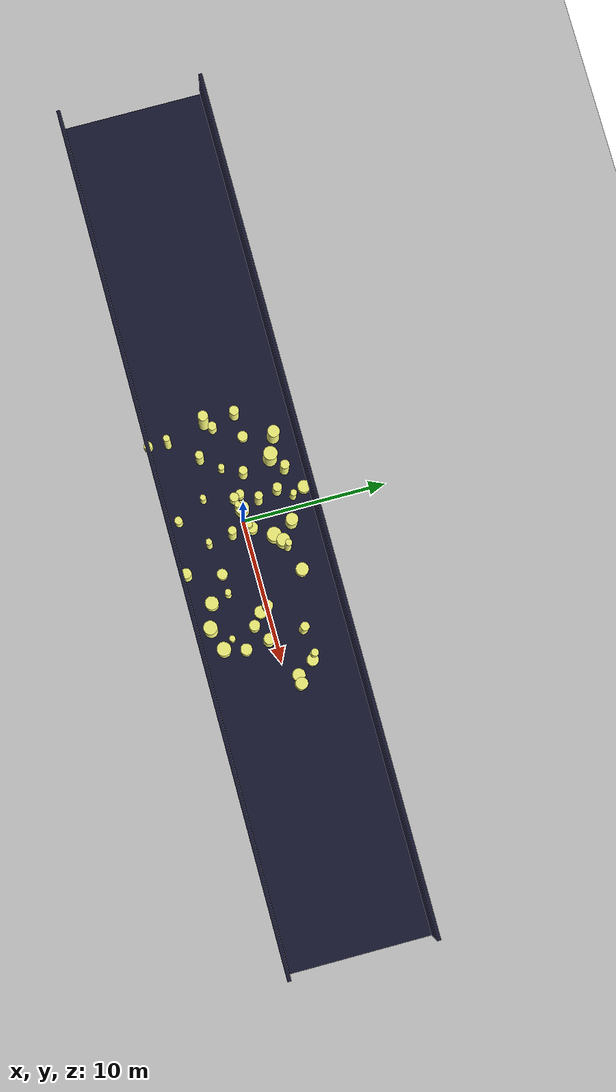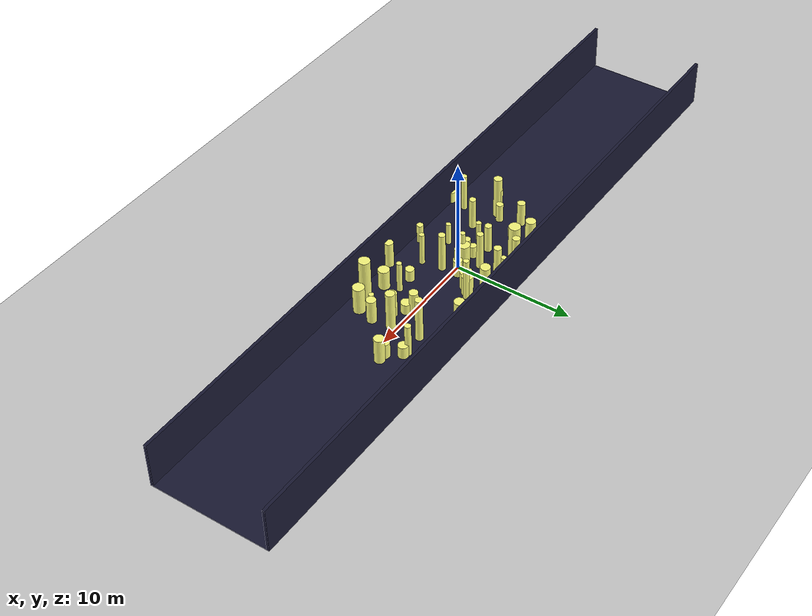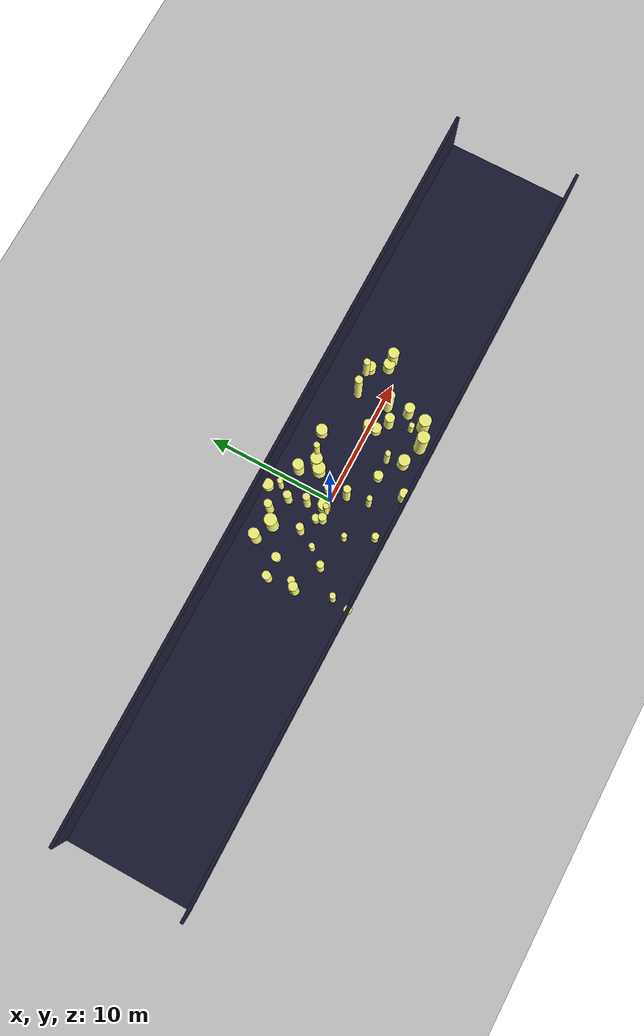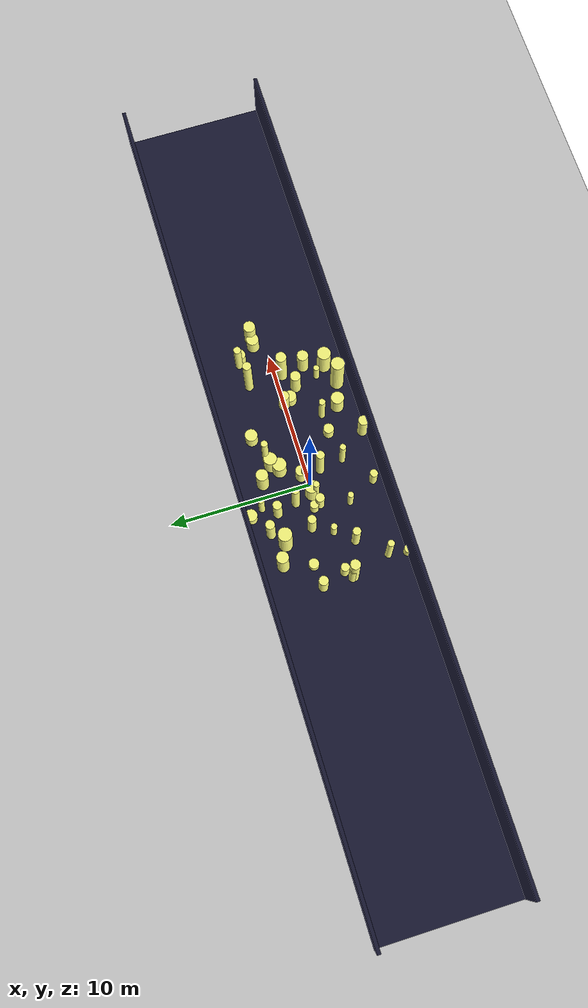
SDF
<sdf version="1.4">
 <world name="default">
  <include><uri>model://ground_plane</uri></include>
  <include><uri>model://sun</uri></include>
  <model name="forest">
   <static>true</static>
   <link name="cylinder3">
    <pose>8.377565184089626 -0.4774144621142149 1.7249580205077046 0 0 0</pose>
    <visual name="visual">
     <geometry>
      <cylinder><radius>0.3816601781571072</radius><length>3.4499160410154093</length></cylinder>
     </geometry>
     <material>
      <ambient>0.6 0.6 0.6 1</ambient>
      <diffuse>1 1 0.5 1</diffuse>
      <specular>0 0 0</specular>
      <emissive>0 0 0 1</emissive>
     </material>
    </visual>
    <collision name="collision">
     <geometry>
      <cylinder><radius>0.3816601781571072</radius><length>3.4499160410154093</length></cylinder>
     </geometry>
     <max_contacts>0</max_contacts>
    </collision>
   </link>
   <link name="cylinder7">
    <pose>-4.7892316451903625 -1.782252144681995 1.4149924909686387 0 0 0</pose>
    <visual name="visual">
     <geometry>
      <cylinder><radius>0.282575552453872</radius><length>2.8299849819372773</length></cylinder>
     </geometry>
     <material>
      <ambient>0.6 0.6 0.6 1</ambient>
      <diffuse>1 1 0.5 1</diffuse>
      <specular>0 0 0</specular>
      <emissive>0 0 0 1</emissive>
     </material>
    </visual>
    <collision name="collision">
     <geometry>
      <cylinder><radius>0.282575552453872</radius><length>2.8299849819372773</length></cylinder>
     </geometry>
     <max_contacts>0</max_contacts>
    </collision>
   </link>
   <link name="cylinder8">
    <pose>-3.6448727700532153 2.8580336375987603 1.4945671176735664 0 0 0</pose>
    <visual name="visual">
     <geometry>
      <cylinder><radius>0.4844523856458611</radius><length>2.989134235347133</length></cylinder>
     </geometry>
     <material>
      <ambient>0.6 0.6 0.6 1</ambient>
      <diffuse>1 1 0.5 1</diffuse>
      <specular>0 0 0</specular>
      <emissive>0 0 0 1</emissive>
     </material>
    </visual>
    <collision name="collision">
     <geometry>
      <cylinder><radius>0.4844523856458611</radius><length>2.989134235347133</length></cylinder>
     </geometry>
     <max_contacts>0</max_contacts>
    </collision>
   </link>
   <link name="cylinder9">
    <pose>-1.1623011544158075 4.57616283363088 0.45587341599845277 0 0 0</pose>
    <visual name="visual">
     <geometry>
      <cylinder><radius>0.4354340474725951</radius><length>0.9117468319969055</length></cylinder>
     </geometry>
     <material>
      <ambient>0.6 0.6 0.6 1</ambient>
      <diffuse>1 1 0.5 1</diffuse>
      <specular>0 0 0</specular>
      <emissive>0 0 0 1</emissive>
     </material>
    </visual>
    <collision name="collision">
     <geometry>
      <cylinder><radius>0.4354340474725951</radius><length>0.9117468319969055</length></cylinder>
     </geometry>
     <max_contacts>0</max_contacts>
    </collision>
   </link>
   <link name="cylinder11">
    <pose>-3.7788375125863816 -0.5392359730300118 0.8549719906756208 0 0 0</pose>
    <visual name="visual">
     <geometry>
      <cylinder><radius>0.2205920576685439</radius><length>1.7099439813512416</length></cylinder>
     </geometry>
     <material>
      <ambient>0.6 0.6 0.6 1</ambient>
      <diffuse>1 1 0.5 1</diffuse>
      <specular>0 0 0</specular>
      <emissive>0 0 0 1</emissive>
     </material>
    </visual>
    <collision name="collision">
     <geometry>
      <cylinder><radius>0.2205920576685439</radius><length>1.7099439813512416</length></cylinder>
     </geometry>
     <max_contacts>0</max_contacts>
    </collision>
   </link>
   <link name="cylinder12">
    <pose>-6.6620790563027725 -0.4087574144002133 0.8482972163667704 0 0 0</pose>
    <visual name="visual">
     <geometry>
      <cylinder><radius>0.2986509980933311</radius><length>1.6965944327335407</length></cylinder>
     </geometry>
     <material>
      <ambient>0.6 0.6 0.6 1</ambient>
      <diffuse>1 1 0.5 1</diffuse>
      <specular>0 0 0</specular>
      <emissive>0 0 0 1</emissive>
     </material>
    </visual>
    <collision name="collision">
     <geometry>
      <cylinder><radius>0.2986509980933311</radius><length>1.6965944327335407</length></cylinder>
     </geometry>
     <max_contacts>0</max_contacts>
    </collision>
   </link>
   <link name="cylinder14">
    <pose>6.68073826129892 -4.050243944122489 1.8426344751059494 0 0 0</pose>
    <visual name="visual">
     <geometry>
      <cylinder><radius>0.4736189609778217</radius><length>3.6852689502118987</length></cylinder>
     </geometry>
     <material>
      <ambient>0.6 0.6 0.6 1</ambient>
      <diffuse>1 1 0.5 1</diffuse>
      <specular>0 0 0</specular>
      <emissive>0 0 0 1</emissive>
     </material>
    </visual>
    <collision name="collision">
     <geometry>
      <cylinder><radius>0.4736189609778217</radius><length>3.6852689502118987</length></cylinder>
     </geometry>
     <max_contacts>0</max_contacts>
    </collision>
   </link>
   <link name="cylinder16">
    <pose>2.562045674358533 2.4284179138466566 1.8893746194092786 0 0 0</pose>
    <visual name="visual">
     <geometry>
      <cylinder><radius>0.23251905358783606</radius><length>3.7787492388185573</length></cylinder>
     </geometry>
     <material>
      <ambient>0.6 0.6 0.6 1</ambient>
      <diffuse>1 1 0.5 1</diffuse>
      <specular>0 0 0</specular>
      <emissive>0 0 0 1</emissive>
     </material>
    </visual>
    <collision name="collision">
     <geometry>
      <cylinder><radius>0.23251905358783606</radius><length>3.7787492388185573</length></cylinder>
     </geometry>
     <max_contacts>0</max_contacts>
    </collision>
   </link>
   <link name="cylinder22">
    <pose>-5.058869025532459 3.4578576876256015 1.4231111228881201 0 0 0</pose>
    <visual name="visual">
     <geometry>
      <cylinder><radius>0.4195538924439936</radius><length>2.8462222457762403</length></cylinder>
     </geometry>
     <material>
      <ambient>0.6 0.6 0.6 1</ambient>
      <diffuse>1 1 0.5 1</diffuse>
      <specular>0 0 0</specular>
      <emissive>0 0 0 1</emissive>
     </material>
    </visual>
    <collision name="collision">
     <geometry>
      <cylinder><radius>0.4195538924439936</radius><length>2.8462222457762403</length></cylinder>
     </geometry>
     <max_contacts>0</max_contacts>
    </collision>
   </link>
   <link name="cylinder27">
    <pose>-1.0378330110724185 1.3430629946443906 1.683671754725586 0 0 0</pose>
    <visual name="visual">
     <geometry>
      <cylinder><radius>0.28354988021213756</radius><length>3.367343509451172</length></cylinder>
     </geometry>
     <material>
      <ambient>0.6 0.6 0.6 1</ambient>
      <diffuse>1 1 0.5 1</diffuse>
      <specular>0 0 0</specular>
      <emissive>0 0 0 1</emissive>
     </material>
    </visual>
    <collision name="collision">
     <geometry>
      <cylinder><radius>0.28354988021213756</radius><length>3.367343509451172</length></cylinder>
     </geometry>
     <max_contacts>0</max_contacts>
    </collision>
   </link>
   <link name="cylinder33">
    <pose>0.7096007454045754 0.43247661946426597 0.7666937386791144 0 0 0</pose>
    <visual name="visual">
     <geometry>
      <cylinder><radius>0.38562317667492785</radius><length>1.5333874773582288</length></cylinder>
     </geometry>
     <material>
      <ambient>0.6 0.6 0.6 1</ambient>
      <diffuse>1 1 0.5 1</diffuse>
      <specular>0 0 0</specular>
      <emissive>0 0 0 1</emissive>
     </material>
    </visual>
    <collision name="collision">
     <geometry>
      <cylinder><radius>0.38562317667492785</radius><length>1.5333874773582288</length></cylinder>
     </geometry>
     <max_contacts>0</max_contacts>
    </collision>
   </link>
   <link name="cylinder36">
    <pose>-1.394635543051077 2.7415323315756783 1.183814106745353 0 0 0</pose>
    <visual name="visual">
     <geometry>
      <cylinder><radius>0.3163471055712237</radius><length>2.367628213490706</length></cylinder>
     </geometry>
     <material>
      <ambient>0.6 0.6 0.6 1</ambient>
      <diffuse>1 1 0.5 1</diffuse>
      <specular>0 0 0</specular>
      <emissive>0 0 0 1</emissive>
     </material>
    </visual>
    <collision name="collision">
     <geometry>
      <cylinder><radius>0.3163471055712237</radius><length>2.367628213490706</length></cylinder>
     </geometry>
     <max_contacts>0</max_contacts>
    </collision>
   </link>
   <link name="cylinder44">
    <pose>6.353562092089117 -0.5031696292536649 0.5001863215971156 0 0 0</pose>
    <visual name="visual">
     <geometry>
      <cylinder><radius>0.43484996114699337</radius><length>1.0003726431942312</length></cylinder>
     </geometry>
     <material>
      <ambient>0.6 0.6 0.6 1</ambient>
      <diffuse>1 1 0.5 1</diffuse>
      <specular>0 0 0</specular>
      <emissive>0 0 0 1</emissive>
     </material>
    </visual>
    <collision name="collision">
     <geometry>
      <cylinder><radius>0.43484996114699337</radius><length>1.0003726431942312</length></cylinder>
     </geometry>
     <max_contacts>0</max_contacts>
    </collision>
   </link>
   <link name="cylinder51">
    <pose>8.585156365303128 -2.097513411166113 1.0711215126746456 0 0 0</pose>
    <visual name="visual">
     <geometry>
      <cylinder><radius>0.3970543323997602</radius><length>2.1422430253492912</length></cylinder>
     </geometry>
     <material>
      <ambient>0.6 0.6 0.6 1</ambient>
      <diffuse>1 1 0.5 1</diffuse>
      <specular>0 0 0</specular>
      <emissive>0 0 0 1</emissive>
     </material>
    </visual>
    <collision name="collision">
     <geometry>
      <cylinder><radius>0.3970543323997602</radius><length>2.1422430253492912</length></cylinder>
     </geometry>
     <max_contacts>0</max_contacts>
    </collision>
   </link>
   <link name="cylinder56">
    <pose>7.614248750781236 -2.8064159674329137 0.8006742088423257 0 0 0</pose>
    <visual name="visual">
     <geometry>
      <cylinder><radius>0.21531449590459137</radius><length>1.6013484176846513</length></cylinder>
     </geometry>
     <material>
      <ambient>0.6 0.6 0.6 1</ambient>
      <diffuse>1 1 0.5 1</diffuse>
      <specular>0 0 0</specular>
      <emissive>0 0 0 1</emissive>
     </material>
    </visual>
    <collision name="collision">
     <geometry>
      <cylinder><radius>0.21531449590459137</radius><length>1.6013484176846513</length></cylinder>
     </geometry>
     <max_contacts>0</max_contacts>
    </collision>
   </link>
   <link name="cylinder58">
    <pose>8.220326605943043 1.99296571541319 1.9742979290480702 0 0 0</pose>
    <visual name="visual">
     <geometry>
      <cylinder><radius>0.3036361724176349</radius><length>3.9485958580961404</length></cylinder>
     </geometry>
     <material>
      <ambient>0.6 0.6 0.6 1</ambient>
      <diffuse>1 1 0.5 1</diffuse>
      <specular>0 0 0</specular>
      <emissive>0 0 0 1</emissive>
     </material>
    </visual>
    <collision name="collision">
     <geometry>
      <cylinder><radius>0.3036361724176349</radius><length>3.9485958580961404</length></cylinder>
     </geometry>
     <max_contacts>0</max_contacts>
    </collision>
   </link>
   <link name="cylinder60">
    <pose>4.2874149232962 2.9602339339457213 0.6199702220205348 0 0 0</pose>
    <visual name="visual">
     <geometry>
      <cylinder><radius>0.44588978340398355</radius><length>1.2399404440410695</length></cylinder>
     </geometry>
     <material>
      <ambient>0.6 0.6 0.6 1</ambient>
      <diffuse>1 1 0.5 1</diffuse>
      <specular>0 0 0</specular>
      <emissive>0 0 0 1</emissive>
     </material>
    </visual>
    <collision name="collision">
     <geometry>
      <cylinder><radius>0.44588978340398355</radius><length>1.2399404440410695</length></cylinder>
     </geometry>
     <max_contacts>0</max_contacts>
    </collision>
   </link>
   <link name="cylinder61">
    <pose>-6.3656714970462005 -3.623330923076481 1.6765309125391858 0 0 0</pose>
    <visual name="visual">
     <geometry>
      <cylinder><radius>0.23369820809691802</radius><length>3.3530618250783717</length></cylinder>
     </geometry>
     <material>
      <ambient>0.6 0.6 0.6 1</ambient>
      <diffuse>1 1 0.5 1</diffuse>
      <specular>0 0 0</specular>
      <emissive>0 0 0 1</emissive>
     </material>
    </visual>
    <collision name="collision">
     <geometry>
      <cylinder><radius>0.23369820809691802</radius><length>3.3530618250783717</length></cylinder>
     </geometry>
     <max_contacts>0</max_contacts>
    </collision>
   </link>
   <link name="cylinder67">
    <pose>-3.06196415271927 0.8069878091396188 1.2638531243050655 0 0 0</pose>
    <visual name="visual">
     <geometry>
      <cylinder><radius>0.2997382491270266</radius><length>2.527706248610131</length></cylinder>
     </geometry>
     <material>
      <ambient>0.6 0.6 0.6 1</ambient>
      <diffuse>1 1 0.5 1</diffuse>
      <specular>0 0 0</specular>
      <emissive>0 0 0 1</emissive>
     </material>
    </visual>
    <collision name="collision">
     <geometry>
      <cylinder><radius>0.2997382491270266</radius><length>2.527706248610131</length></cylinder>
     </geometry>
     <max_contacts>0</max_contacts>
    </collision>
   </link>
   <link name="cylinder69">
    <pose>0.5828403769818529 0.2471193746265179 1.2380393404211565 0 0 0</pose>
    <visual name="visual">
     <geometry>
      <cylinder><radius>0.20819283984389994</radius><length>2.476078680842313</length></cylinder>
     </geometry>
     <material>
      <ambient>0.6 0.6 0.6 1</ambient>
      <diffuse>1 1 0.5 1</diffuse>
      <specular>0 0 0</specular>
      <emissive>0 0 0 1</emissive>
     </material>
    </visual>
    <collision name="collision">
     <geometry>
      <cylinder><radius>0.20819283984389994</radius><length>2.476078680842313</length></cylinder>
     </geometry>
     <max_contacts>0</max_contacts>
    </collision>
   </link>
   <link name="cylinder70">
    <pose>-2.046864401566893 -2.270482537999005 0.9949356317063305 0 0 0</pose>
    <visual name="visual">
     <geometry>
      <cylinder><radius>0.20912341714360752</radius><length>1.989871263412661</length></cylinder>
     </geometry>
     <material>
      <ambient>0.6 0.6 0.6 1</ambient>
      <diffuse>1 1 0.5 1</diffuse>
      <specular>0 0 0</specular>
      <emissive>0 0 0 1</emissive>
     </material>
    </visual>
    <collision name="collision">
     <geometry>
      <cylinder><radius>0.20912341714360752</radius><length>1.989871263412661</length></cylinder>
     </geometry>
     <max_contacts>0</max_contacts>
    </collision>
   </link>
   <link name="cylinder75">
    <pose>-0.8946918725230688 -0.16461334124496396 1.4314083152317427 0 0 0</pose>
    <visual name="visual">
     <geometry>
      <cylinder><radius>0.21626416116206756</radius><length>2.8628166304634854</length></cylinder>
     </geometry>
     <material>
      <ambient>0.6 0.6 0.6 1</ambient>
      <diffuse>1 1 0.5 1</diffuse>
      <specular>0 0 0</specular>
      <emissive>0 0 0 1</emissive>
     </material>
    </visual>
    <collision name="collision">
     <geometry>
      <cylinder><radius>0.21626416116206756</radius><length>2.8628166304634854</length></cylinder>
     </geometry>
     <max_contacts>0</max_contacts>
    </collision>
   </link>
   <link name="cylinder80">
    <pose>-1.7642763120533829 0.23109322598033266 0.577599142947901 0 0 0</pose>
    <visual name="visual">
     <geometry><cylinder><radius>0.301164143208444</radius><length>1.155198285895802</length></cylinder></geometry>
     <material>
      <ambient>0.6 0.6 0.6 1</ambient>
      <diffuse>1 1 0.5 1</diffuse>
      <specular>0 0 0</specular>
      <emissive>0 0 0 1</emissive>
     </material>
    </visual>
    <collision name="collision">
     <geometry><cylinder><radius>0.301164143208444</radius><length>1.155198285895802</length></cylinder></geometry>
     <max_contacts>0</max_contacts>
    </collision>
   </link>
   <link name="cylinder81">
    <pose>4.975419251527157 -3.5310382134888583 0.8915683487849049 0 0 0</pose>
    <visual name="visual">
     <geometry>
      <cylinder><radius>0.46261490430756014</radius><length>1.7831366975698097</length></cylinder>
     </geometry>
     <material>
      <ambient>0.6 0.6 0.6 1</ambient>
      <diffuse>1 1 0.5 1</diffuse>
      <specular>0 0 0</specular>
      <emissive>0 0 0 1</emissive>
     </material>
    </visual>
    <collision name="collision">
     <geometry>
      <cylinder><radius>0.46261490430756014</radius><length>1.7831366975698097</length></cylinder>
     </geometry>
     <max_contacts>0</max_contacts>
    </collision>
   </link>
   <link name="cylinder82">
    <pose>-0.7461941717999352 3.700987803713959 1.160260992987272 0 0 0</pose>
    <visual name="visual">
     <geometry>
      <cylinder><radius>0.2233423496064155</radius><length>2.320521985974544</length></cylinder>
     </geometry>
     <material>
      <ambient>0.6 0.6 0.6 1</ambient>
      <diffuse>1 1 0.5 1</diffuse>
      <specular>0 0 0</specular>
      <emissive>0 0 0 1</emissive>
     </material>
    </visual>
    <collision name="collision">
     <geometry>
      <cylinder><radius>0.2233423496064155</radius><length>2.320521985974544</length></cylinder>
     </geometry>
     <max_contacts>0</max_contacts>
    </collision>
   </link>
   <link name="cylinder84">
    <pose>10.373258740443568 2.037700003979472 0.5648904066116273 0 0 0</pose>
    <visual name="visual">
     <geometry>
      <cylinder><radius>0.4082264990640213</radius><length>1.1297808132232545</length></cylinder>
     </geometry>
     <material>
      <ambient>0.6 0.6 0.6 1</ambient>
      <diffuse>1 1 0.5 1</diffuse>
      <specular>0 0 0</specular>
      <emissive>0 0 0 1</emissive>
     </material>
    </visual>
    <collision name="collision">
     <geometry>
      <cylinder><radius>0.4082264990640213</radius><length>1.1297808132232545</length></cylinder>
     </geometry>
     <max_contacts>0</max_contacts>
    </collision>
   </link>
   <link name="cylinder85">
    <pose>-7.127864119193433 -0.8958384904049925 1.8887481768157812 0 0 0</pose>
    <visual name="visual">
     <geometry>
      <cylinder><radius>0.3499024032607062</radius><length>3.7774963536315624</length></cylinder>
     </geometry>
     <material>
      <ambient>0.6 0.6 0.6 1</ambient>
      <diffuse>1 1 0.5 1</diffuse>
      <specular>0 0 0</specular>
      <emissive>0 0 0 1</emissive>
     </material>
    </visual>
    <collision name="collision">
     <geometry>
      <cylinder><radius>0.3499024032607062</radius><length>3.7774963536315624</length></cylinder>
     </geometry>
     <max_contacts>0</max_contacts>
    </collision>
   </link>
   <link name="cylinder86">
    <pose>11.103074522681965 0.8641893436620922 0.70630477170953 0 0 0</pose>
    <visual name="visual">
     <geometry>
      <cylinder><radius>0.44271004390207874</radius><length>1.41260954341906</length></cylinder>
     </geometry>
     <material>
      <ambient>0.6 0.6 0.6 1</ambient>
      <diffuse>1 1 0.5 1</diffuse>
      <specular>0 0 0</specular>
      <emissive>0 0 0 1</emissive>
     </material>
    </visual>
    <collision name="collision">
     <geometry>
      <cylinder><radius>0.44271004390207874</radius><length>1.41260954341906</length></cylinder>
     </geometry>
     <max_contacts>0</max_contacts>
    </collision>
   </link>
   <link name="cylinder87">
    <pose>-7.220482613757362 1.2798139803107675 1.0985781807091346 0 0 0</pose>
    <visual name="visual">
     <geometry>
      <cylinder><radius>0.3333323828535727</radius><length>2.197156361418269</length></cylinder>
     </geometry>
     <material>
      <ambient>0.6 0.6 0.6 1</ambient>
      <diffuse>1 1 0.5 1</diffuse>
      <specular>0 0 0</specular>
      <emissive>0 0 0 1</emissive>
     </material>
    </visual>
    <collision name="collision">
     <geometry>
      <cylinder><radius>0.3333323828535727</radius><length>2.197156361418269</length></cylinder>
     </geometry>
     <max_contacts>0</max_contacts>
    </collision>
   </link>
   <link name="cylinder88">
    <pose>6.109414929351708 0.03559821457141332 1.034881188887801 0 0 0</pose>
    <visual name="visual">
     <geometry>
      <cylinder><radius>0.37227040925197336</radius><length>2.069762377775602</length></cylinder>
     </geometry>
     <material>
      <ambient>0.6 0.6 0.6 1</ambient>
      <diffuse>1 1 0.5 1</diffuse>
      <specular>0 0 0</specular>
      <emissive>0 0 0 1</emissive>
     </material>
    </visual>
    <collision name="collision">
     <geometry>
      <cylinder><radius>0.37227040925197336</radius><length>2.069762377775602</length></cylinder>
     </geometry>
     <max_contacts>0</max_contacts>
    </collision>
   </link>
   <link name="cylinder96">
    <pose>-2.6770149415465667 3.606887001818059 1.4143849487234712 0 0 0</pose>
    <visual name="visual">
     <geometry>
      <cylinder><radius>0.3200960605679206</radius><length>2.8287698974469424</length></cylinder>
     </geometry>
     <material>
      <ambient>0.6 0.6 0.6 1</ambient>
      <diffuse>1 1 0.5 1</diffuse>
      <specular>0 0 0</specular>
      <emissive>0 0 0 1</emissive>
     </material>
    </visual>
    <collision name="collision">
     <geometry>
      <cylinder><radius>0.3200960605679206</radius><length>2.8287698974469424</length></cylinder>
     </geometry>
     <max_contacts>0</max_contacts>
    </collision>
   </link>
   <link name="cylinder102">
    <pose>1.5533630169742416 1.7352345454244968 0.8270681566241196 0 0 0</pose>
    <visual name="visual">
     <geometry>
      <cylinder><radius>0.4946922055838206</radius><length>1.6541363132482392</length></cylinder>
     </geometry>
     <material>
      <ambient>0.6 0.6 0.6 1</ambient>
      <diffuse>1 1 0.5 1</diffuse>
      <specular>0 0 0</specular>
      <emissive>0 0 0 1</emissive>
     </material>
    </visual>
    <collision name="collision">
     <geometry>
      <cylinder><radius>0.4946922055838206</radius><length>1.6541363132482392</length></cylinder>
     </geometry>
     <max_contacts>0</max_contacts>
    </collision>
   </link>
   <link name="cylinder106">
    <pose>11.726565742367718 0.8740510216736288 1.1387121739994173 0 0 0</pose>
    <visual name="visual">
     <geometry>
      <cylinder><radius>0.4242324410098091</radius><length>2.2774243479988345</length></cylinder>
     </geometry>
     <material>
      <ambient>0.6 0.6 0.6 1</ambient>
      <diffuse>1 1 0.5 1</diffuse>
      <specular>0 0 0</specular>
      <emissive>0 0 0 1</emissive>
     </material>
    </visual>
    <collision name="collision">
     <geometry>
      <cylinder><radius>0.4242324410098091</radius><length>2.2774243479988345</length></cylinder>
     </geometry>
     <max_contacts>0</max_contacts>
    </collision>
   </link>
   <link name="cylinder107">
    <pose>-6.572997528858771 -4.96490435719428 0.5287010821479312 0 0 0</pose>
    <visual name="visual">
     <geometry>
      <cylinder><radius>0.30763078586294557</radius><length>1.0574021642958624</length></cylinder>
     </geometry>
     <material>
      <ambient>0.6 0.6 0.6 1</ambient>
      <diffuse>1 1 0.5 1</diffuse>
      <specular>0 0 0</specular>
      <emissive>0 0 0 1</emissive>
     </material>
    </visual>
    <collision name="collision">
     <geometry>
      <cylinder><radius>0.30763078586294557</radius><length>1.0574021642958624</length></cylinder>
     </geometry>
     <max_contacts>0</max_contacts>
    </collision>
   </link>
   <link name="cylinder111">
    <pose>-1.5670311954629135 -0.22604759739001068 0.8643463390314782 0 0 0</pose>
    <visual name="visual">
     <geometry>
      <cylinder><radius>0.31822898180369463</radius><length>1.7286926780629563</length></cylinder>
     </geometry>
     <material>
      <ambient>0.6 0.6 0.6 1</ambient>
      <diffuse>1 1 0.5 1</diffuse>
      <specular>0 0 0</specular>
      <emissive>0 0 0 1</emissive>
     </material>
    </visual>
    <collision name="collision">
     <geometry>
      <cylinder><radius>0.31822898180369463</radius><length>1.7286926780629563</length></cylinder>
     </geometry>
     <max_contacts>0</max_contacts>
    </collision>
   </link>
   <link name="cylinder115">
    <pose>2.0860206748208974 2.22666721132007 0.8970450504560841 0 0 0</pose>
    <visual name="visual">
     <geometry>
      <cylinder><radius>0.4609925750122512</radius><length>1.7940901009121681</length></cylinder>
     </geometry>
     <material>
      <ambient>0.6 0.6 0.6 1</ambient>
      <diffuse>1 1 0.5 1</diffuse>
      <specular>0 0 0</specular>
      <emissive>0 0 0 1</emissive>
     </material>
    </visual>
    <collision name="collision">
     <geometry>
      <cylinder><radius>0.4609925750122512</radius><length>1.7940901009121681</length></cylinder>
     </geometry>
     <max_contacts>0</max_contacts>
    </collision>
   </link>
   <link name="cylinder116">
    <pose>4.640290239248166 -2.3036615041666586 1.383743613559663 0 0 0</pose>
    <visual name="visual">
     <geometry>
      <cylinder><radius>0.2235258347646423</radius><length>2.767487227119326</length></cylinder>
     </geometry>
     <material>
      <ambient>0.6 0.6 0.6 1</ambient>
      <diffuse>1 1 0.5 1</diffuse>
      <specular>0 0 0</specular>
      <emissive>0 0 0 1</emissive>
     </material>
    </visual>
    <collision name="collision">
     <geometry>
      <cylinder><radius>0.2235258347646423</radius><length>2.767487227119326</length></cylinder>
     </geometry>
     <max_contacts>0</max_contacts>
    </collision>
   </link>
   <link name="cylinder118">
    <pose>8.196010103494508 -3.5420103744460896 1.2012710236950972 0 0 0</pose>
    <visual name="visual">
     <geometry>
      <cylinder><radius>0.4827666001329157</radius><length>2.4025420473901944</length></cylinder>
     </geometry>
     <material>
      <ambient>0.6 0.6 0.6 1</ambient>
      <diffuse>1 1 0.5 1</diffuse>
      <specular>0 0 0</specular>
      <emissive>0 0 0 1</emissive>
     </material>
    </visual>
    <collision name="collision">
     <geometry>
      <cylinder><radius>0.4827666001329157</radius><length>2.4025420473901944</length></cylinder>
     </geometry>
     <max_contacts>0</max_contacts>
    </collision>
   </link>
   <link name="cylinder119">
    <pose>1.0654032310563721 -2.6666302852799983 1.4599968335563467 0 0 0</pose>
    <visual name="visual">
     <geometry>
      <cylinder><radius>0.21713567600012837</radius><length>2.9199936671126934</length></cylinder>
     </geometry>
     <material>
      <ambient>0.6 0.6 0.6 1</ambient>
      <diffuse>1 1 0.5 1</diffuse>
      <specular>0 0 0</specular>
      <emissive>0 0 0 1</emissive>
     </material>
    </visual>
    <collision name="collision">
     <geometry>
      <cylinder><radius>0.21713567600012837</radius><length>2.9199936671126934</length></cylinder>
     </geometry>
     <max_contacts>0</max_contacts>
    </collision>
   </link>
   <link name="cylinder122">
    <pose>-5.606955694504261 1.4572293198485315 0.3683382278415636 0 0 0</pose>
    <visual name="visual">
     <geometry>
      <cylinder><radius>0.3575308725813434</radius><length>0.7366764556831272</length></cylinder>
     </geometry>
     <material>
      <ambient>0.6 0.6 0.6 1</ambient>
      <diffuse>1 1 0.5 1</diffuse>
      <specular>0 0 0</specular>
      <emissive>0 0 0 1</emissive>
     </material>
    </visual>
    <collision name="collision">
     <geometry>
      <cylinder><radius>0.3575308725813434</radius><length>0.7366764556831272</length></cylinder>
     </geometry>
     <max_contacts>0</max_contacts>
    </collision>
   </link>
   <link name="cylinder123">
    <pose>2.6646458788792025 -4.671571564376506 1.1608667754458863 0 0 0</pose>
    <visual name="visual">
     <geometry>
      <cylinder><radius>0.3587525959482323</radius><length>2.3217335508917727</length></cylinder>
     </geometry>
     <material>
      <ambient>0.6 0.6 0.6 1</ambient>
      <diffuse>1 1 0.5 1</diffuse>
      <specular>0 0 0</specular>
      <emissive>0 0 0 1</emissive>
     </material>
    </visual>
    <collision name="collision">
     <geometry>
      <cylinder><radius>0.3587525959482323</radius><length>2.3217335508917727</length></cylinder>
     </geometry>
     <max_contacts>0</max_contacts>
    </collision>
   </link>
   <link name="cylinder125">
    <pose>-0.6995176388997706 0.09642610060183632 0.9619633972383851 0 0 0</pose>
    <visual name="visual">
     <geometry>
      <cylinder><radius>0.4743555388024988</radius><length>1.9239267944767702</length></cylinder>
     </geometry>
     <material>
      <ambient>0.6 0.6 0.6 1</ambient>
      <diffuse>1 1 0.5 1</diffuse>
      <specular>0 0 0</specular>
      <emissive>0 0 0 1</emissive>
     </material>
    </visual>
    <collision name="collision">
     <geometry>
      <cylinder><radius>0.4743555388024988</radius><length>1.9239267944767702</length></cylinder>
     </geometry>
     <max_contacts>0</max_contacts>
    </collision>
   </link>
   <link name="cylinder129">
    <pose>7.203792426897067 -1.1530638333178702 1.124559514891252 0 0 0</pose>
    <visual name="visual">
     <geometry>
      <cylinder><radius>0.3715539374119635</radius><length>2.249119029782504</length></cylinder>
     </geometry>
     <material>
      <ambient>0.6 0.6 0.6 1</ambient>
      <diffuse>1 1 0.5 1</diffuse>
      <specular>0 0 0</specular>
      <emissive>0 0 0 1</emissive>
     </material>
    </visual>
    <collision name="collision">
     <geometry>
      <cylinder><radius>0.3715539374119635</radius><length>2.249119029782504</length></cylinder>
     </geometry>
     <max_contacts>0</max_contacts>
    </collision>
   </link>
   <link name="cylinder137">
    <pose>-0.9908689131389536 -4.268566962231679 0.8587966185717709 0 0 0</pose>
    <visual name="visual">
     <geometry>
      <cylinder><radius>0.2726222010451518</radius><length>1.7175932371435418</length></cylinder>
     </geometry>
     <material>
      <ambient>0.6 0.6 0.6 1</ambient>
      <diffuse>1 1 0.5 1</diffuse>
      <specular>0 0 0</specular>
      <emissive>0 0 0 1</emissive>
     </material>
    </visual>
    <collision name="collision">
     <geometry>
      <cylinder><radius>0.2726222010451518</radius><length>1.7175932371435418</length></cylinder>
     </geometry>
     <max_contacts>0</max_contacts>
    </collision>
   </link>
   <link name="cylinder138">
    <pose>-7.198249830098469 -0.8066351828327845 1.3255082314922537 0 0 0</pose>
    <visual name="visual">
     <geometry>
      <cylinder><radius>0.2890264227662676</radius><length>2.6510164629845074</length></cylinder>
     </geometry>
     <material>
      <ambient>0.6 0.6 0.6 1</ambient>
      <diffuse>1 1 0.5 1</diffuse>
      <specular>0 0 0</specular>
      <emissive>0 0 0 1</emissive>
     </material>
    </visual>
    <collision name="collision">
     <geometry>
      <cylinder><radius>0.2890264227662676</radius><length>2.6510164629845074</length></cylinder>
     </geometry>
     <max_contacts>0</max_contacts>
    </collision>
   </link>
   <link name="cylinder142">
    <pose>9.996979278715898 2.2272528537169336 1.434540656877597 0 0 0</pose>
    <visual name="visual">
     <geometry>
      <cylinder><radius>0.26055515781008565</radius><length>2.869081313755194</length></cylinder>
     </geometry>
     <material>
      <ambient>0.6 0.6 0.6 1</ambient>
      <diffuse>1 1 0.5 1</diffuse>
      <specular>0 0 0</specular>
      <emissive>0 0 0 1</emissive>
     </material>
    </visual>
    <collision name="collision">
     <geometry>
      <cylinder><radius>0.26055515781008565</radius><length>2.869081313755194</length></cylinder>
     </geometry>
     <max_contacts>0</max_contacts>
    </collision>
   </link>
   <link name="cylinder143">
    <pose>0.9535590568967152 3.1215462971391315 1.1629578313513784 0 0 0</pose>
    <visual name="visual">
     <geometry>
      <cylinder><radius>0.4271994835823194</radius><length>2.325915662702757</length></cylinder>
     </geometry>
     <material>
      <ambient>0.6 0.6 0.6 1</ambient>
      <diffuse>1 1 0.5 1</diffuse>
      <specular>0 0 0</specular>
      <emissive>0 0 0 1</emissive>
     </material>
    </visual>
    <collision name="collision">
     <geometry>
      <cylinder><radius>0.4271994835823194</radius><length>2.325915662702757</length></cylinder>
     </geometry>
     <max_contacts>0</max_contacts>
    </collision>
   </link>
   <link name="cylinder144">
    <pose>3.2137217353856933 -2.3457100941548923 0.5651800315359135 0 0 0</pose>
    <visual name="visual">
     <geometry><cylinder><radius>0.366795956077618</radius><length>1.130360063071827</length></cylinder></geometry>
     <material>
      <ambient>0.6 0.6 0.6 1</ambient>
      <diffuse>1 1 0.5 1</diffuse>
      <specular>0 0 0</specular>
      <emissive>0 0 0 1</emissive>
     </material>
    </visual>
    <collision name="collision">
     <geometry><cylinder><radius>0.366795956077618</radius><length>1.130360063071827</length></cylinder></geometry>
     <max_contacts>0</max_contacts>
    </collision>
   </link>
   <link name="cylinder148">
    <pose>0.7974201475544724 -0.97283624640645 1.7406330170687192 0 0 0</pose>
    <visual name="visual">
     <geometry>
      <cylinder><radius>0.2888785985728676</radius><length>3.4812660341374384</length></cylinder>
     </geometry>
     <material>
      <ambient>0.6 0.6 0.6 1</ambient>
      <diffuse>1 1 0.5 1</diffuse>
      <specular>0 0 0</specular>
      <emissive>0 0 0 1</emissive>
     </material>
    </visual>
    <collision name="collision">
     <geometry>
      <cylinder><radius>0.2888785985728676</radius><length>3.4812660341374384</length></cylinder>
     </geometry>
     <max_contacts>0</max_contacts>
    </collision>
   </link>
   <link name="cube0">
    <pose>0 5.0 2.0 0 0 0</pose>
    <visual name="visual">
     <geometry><box><size>60.0 0.25 4.0</size></box></geometry>
     <material>
      <ambient>0.1 0.1 0.1 1</ambient>
      <diffuse>0.1 0.1 0.2 1</diffuse>
      <specular>0 0 0</specular>
      <emissive>0 0 0 1</emissive>
     </material>
    </visual>
    <collision name="collision">
     <geometry><box><size>60.0 0.25 4.0</size></box></geometry>
     <max_contacts>0</max_contacts>
    </collision>
   </link>
   <link name="cube1">
    <pose>0 -5.0 2.0 0 0 0</pose>
    <visual name="visual">
     <geometry><box><size>60.0 0.25 4.0</size></box></geometry>
     <material>
      <ambient>0.1 0.1 0.1 1</ambient>
      <diffuse>0.1 0.1 0.2 1</diffuse>
      <specular>0 0 0</specular>
      <emissive>0 0 0 1</emissive>
     </material>
    </visual>
    <collision name="collision">
     <geometry><box><size>60.0 0.25 4.0</size></box></geometry>
     <max_contacts>0</max_contacts>
    </collision>
   </link>
   <link name="cube2">
    <pose>0 0 0.03125 0 0 0</pose>
    <visual name="visual">
     <geometry><box><size>60.0 10 0.0625</size></box></geometry>
     <material>
      <ambient>0.1 0.1 0.1 1</ambient>
      <diffuse>0.1 0.1 0.2 1</diffuse>
      <specular>0 0 0</specular>
      <emissive>0 0 0 1</emissive>
     </material>
    </visual>
    <collision name="collision">
     <geometry><box><size>60.0 10 0.0625</size></box></geometry>
     <max_contacts>0</max_contacts>
    </collision>
   </link>
  </model>
 </world>
</sdf>
